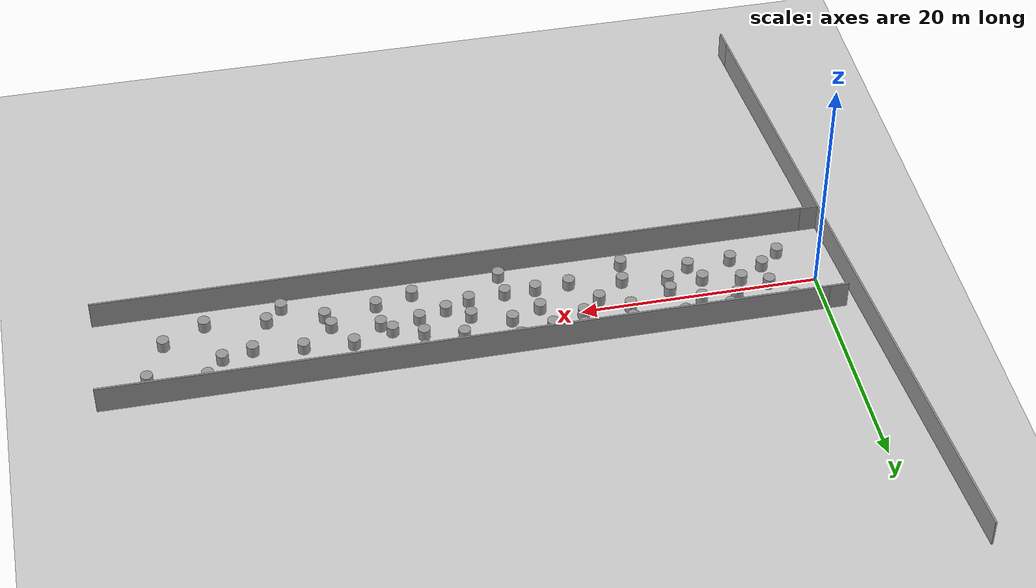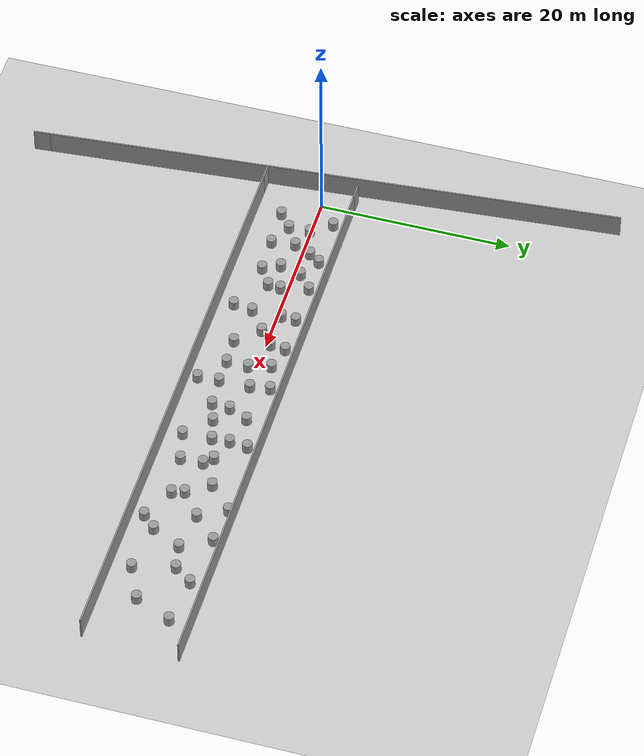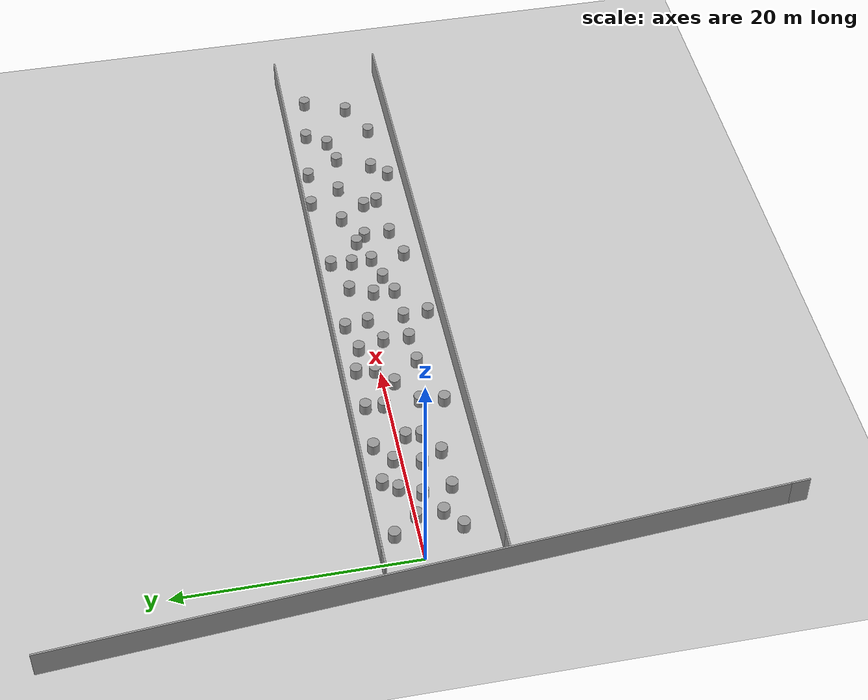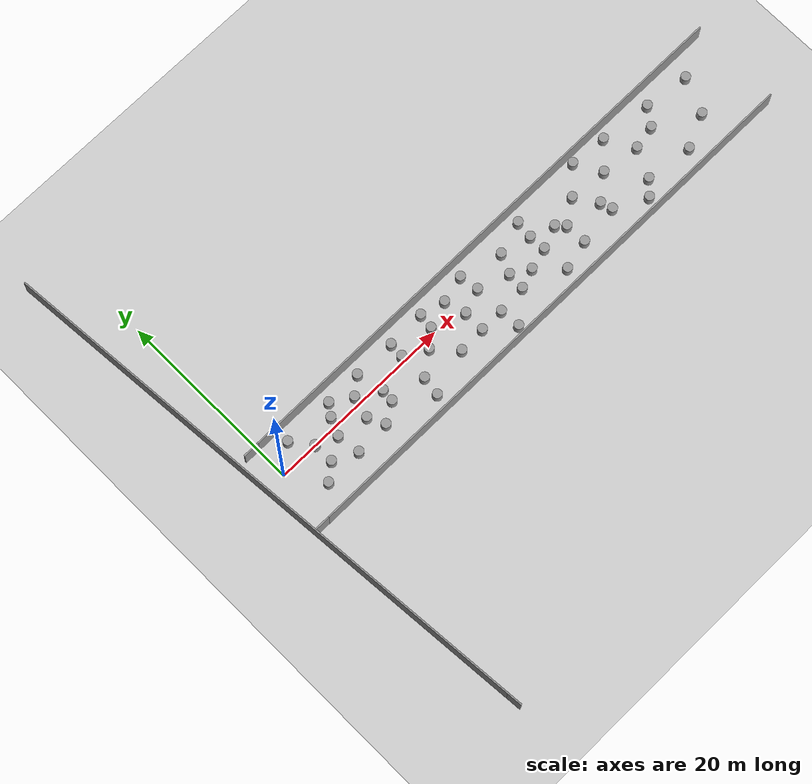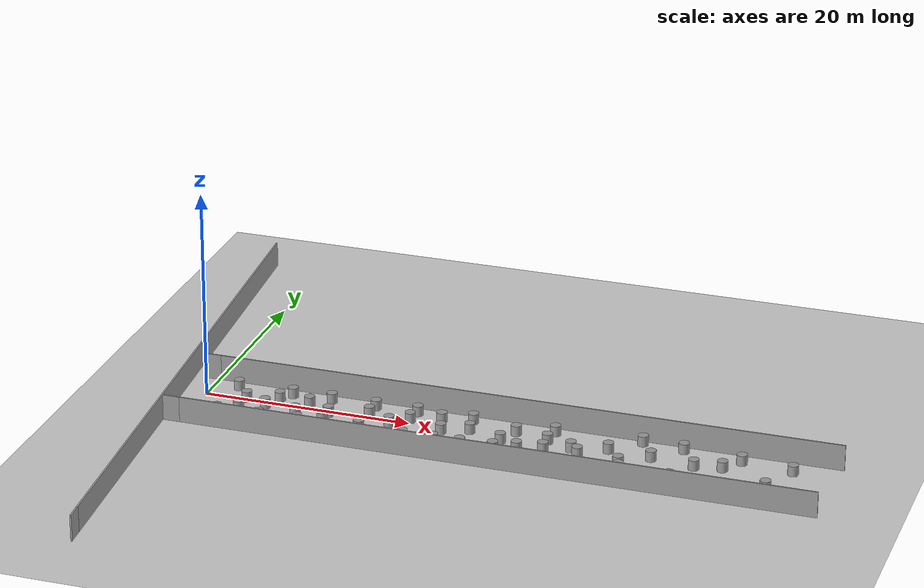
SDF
<sdf version="1.6">
 <world name="default">
  <light name="sun" type="directional">
   <pose>0 0 10 0 -0 0</pose>
   <diffuse>0.8 0.8 0.8 1</diffuse>
   <specular>0.2 0.2 0.2 1</specular>
   <attenuation>
    <range>1000</range>
    <constant>0.9</constant>
    <linear>0.01</linear>
    <quadratic>0.001</quadratic>
   </attenuation>
   <direction>-0.5 0.1 -0.9</direction>
  </light>
  <model name="ground_plane">
   <static>1</static>
   <link name="link">
    <collision name="collision">
     <geometry><plane><normal>0 0 1</normal><size>100 100</size></plane></geometry>
     <surface>
      <contact><collide_bitmask>65535</collide_bitmask></contact>
      <friction><ode><mu>100</mu><mu2>50</mu2></ode></friction>
     </surface>
    </collision>
    <visual name="visual">
     <cast_shadows>0</cast_shadows>
     <geometry><plane><normal>0 0 1</normal><size>100 100</size></plane></geometry>
     <material>
      <script><uri>file://media/materials/scripts/gazebo.material</uri><name>Gazebo/Grey</name></script>
     </material>
    </visual>
   </link>
  </model>
  <gravity>0 0 -9.8</gravity>
  <magnetic_field>6e-06 2.3e-05 -4.2e-05</magnetic_field>
  <atmosphere type="adiabatic"/>
  <physics name="default_physics" default="0" type="ode">
   <max_step_size>0.001</max_step_size>
   <real_time_factor>1</real_time_factor>
   <real_time_update_rate>1000</real_time_update_rate>
  </physics>
  <scene><ambient>0.4 0.4 0.4 1</ambient><background>0.7 0.7 0.7 1</background><shadows>1</shadows></scene>
  <audio><device>default</device></audio>
  <spherical_coordinates>
   <surface_model>EARTH_WGS84</surface_model>
   <latitude_deg>0</latitude_deg>
   <longitude_deg>0</longitude_deg>
   <elevation>0</elevation>
   <heading_deg>0</heading_deg>
  </spherical_coordinates>
  <model name="unit_cylinder">
   <pose>6.99929 0.832206 0.499998 3e-06 -4e-06 0</pose>
   <link name="link">
    <inertial>
     <mass>1</mass>
     <inertia><ixx>0.145833</ixx><ixy>0</ixy><ixz>0</ixz><iyy>0.145833</iyy><iyz>0</iyz><izz>0.125</izz></inertia>
    </inertial>
    <collision name="collision">
     <geometry><cylinder><radius>0.5</radius><length>1</length></cylinder></geometry>
    </collision>
    <visual name="visual">
     <geometry><cylinder><radius>0.5</radius><length>1</length></cylinder></geometry>
     <material>
      <script><name>Gazebo/Grey</name><uri>file://media/materials/scripts/gazebo.material</uri></script>
     </material>
    </visual>
   </link>
  </model>
  <model name="unit_cylinder_0">
   <pose>4.06146 -2.25804 0.499992 -3e-06 4e-06 0</pose>
   <link name="link">
    <inertial>
     <mass>1</mass>
     <inertia><ixx>0.145833</ixx><ixy>0</ixy><ixz>0</ixz><iyy>0.145833</iyy><iyz>0</iyz><izz>0.125</izz></inertia>
    </inertial>
    <collision name="collision">
     <geometry><cylinder><radius>0.5</radius><length>1</length></cylinder></geometry>
    </collision>
    <visual name="visual">
     <geometry><cylinder><radius>0.5</radius><length>1</length></cylinder></geometry>
     <material>
      <script><name>Gazebo/Grey</name><uri>file://media/materials/scripts/gazebo.material</uri></script>
     </material>
    </visual>
   </link>
  </model>
  <model name="unit_cylinder_1">
   <pose>11.6938 2.06939 0.499992 -3e-06 4e-06 0</pose>
   <link name="link">
    <inertial>
     <mass>1</mass>
     <inertia><ixx>0.145833</ixx><ixy>0</ixy><ixz>0</ixz><iyy>0.145833</iyy><iyz>0</iyz><izz>0.125</izz></inertia>
    </inertial>
    <collision name="collision">
     <geometry><cylinder><radius>0.5</radius><length>1</length></cylinder></geometry>
    </collision>
    <visual name="visual">
     <geometry><cylinder><radius>0.5</radius><length>1</length></cylinder></geometry>
     <material>
      <script><name>Gazebo/Grey</name><uri>file://media/materials/scripts/gazebo.material</uri></script>
     </material>
    </visual>
   </link>
  </model>
  <model name="unit_cylinder_2">
   <pose>9.38691 -1.54603 0.499992 -3e-06 4e-06 0</pose>
   <link name="link">
    <inertial>
     <mass>1</mass>
     <inertia><ixx>0.145833</ixx><ixy>0</ixy><ixz>0</ixz><iyy>0.145833</iyy><iyz>0</iyz><izz>0.125</izz></inertia>
    </inertial>
    <collision name="collision">
     <geometry><cylinder><radius>0.5</radius><length>1</length></cylinder></geometry>
    </collision>
    <visual name="visual">
     <geometry><cylinder><radius>0.5</radius><length>1</length></cylinder></geometry>
     <material>
      <script><name>Gazebo/Grey</name><uri>file://media/materials/scripts/gazebo.material</uri></script>
     </material>
    </visual>
   </link>
  </model>
  <model name="unit_cylinder_3">
   <pose>15.6885 -4.63383 0.499992 -3e-06 4e-06 0</pose>
   <link name="link">
    <inertial>
     <mass>1</mass>
     <inertia><ixx>0.145833</ixx><ixy>0</ixy><ixz>0</ixz><iyy>0.145833</iyy><iyz>0</iyz><izz>0.125</izz></inertia>
    </inertial>
    <collision name="collision">
     <geometry><cylinder><radius>0.5</radius><length>1</length></cylinder></geometry>
    </collision>
    <visual name="visual">
     <geometry><cylinder><radius>0.5</radius><length>1</length></cylinder></geometry>
     <material>
      <script><name>Gazebo/Grey</name><uri>file://media/materials/scripts/gazebo.material</uri></script>
     </material>
    </visual>
   </link>
  </model>
  <model name="unit_cylinder_4">
   <pose>15.969 0.43538 0.499992 -3e-06 4e-06 0</pose>
   <link name="link">
    <inertial>
     <mass>1</mass>
     <inertia><ixx>0.145833</ixx><ixy>0</ixy><ixz>0</ixz><iyy>0.145833</iyy><iyz>0</iyz><izz>0.125</izz></inertia>
    </inertial>
    <collision name="collision">
     <geometry><cylinder><radius>0.5</radius><length>1</length></cylinder></geometry>
    </collision>
    <visual name="visual">
     <geometry><cylinder><radius>0.5</radius><length>1</length></cylinder></geometry>
     <material>
      <script><name>Gazebo/Grey</name><uri>file://media/materials/scripts/gazebo.material</uri></script>
     </material>
    </visual>
   </link>
  </model>
  <model name="unit_cylinder_5">
   <pose>20.1456 2.07583 0.499993 -3e-06 -1e-06 -0</pose>
   <link name="link">
    <inertial>
     <mass>1</mass>
     <inertia><ixx>0.145833</ixx><ixy>0</ixy><ixz>0</ixz><iyy>0.145833</iyy><iyz>0</iyz><izz>0.125</izz></inertia>
    </inertial>
    <collision name="collision">
     <geometry><cylinder><radius>0.5</radius><length>1</length></cylinder></geometry>
    </collision>
    <visual name="visual">
     <geometry><cylinder><radius>0.5</radius><length>1</length></cylinder></geometry>
     <material>
      <script><name>Gazebo/Grey</name><uri>file://media/materials/scripts/gazebo.material</uri></script>
     </material>
    </visual>
   </link>
  </model>
  <model name="unit_cylinder_6">
   <pose>20.4307 -3.17791 0.499998 3e-06 -4e-06 0</pose>
   <link name="link">
    <inertial>
     <mass>1</mass>
     <inertia><ixx>0.145833</ixx><ixy>0</ixy><ixz>0</ixz><iyy>0.145833</iyy><iyz>0</iyz><izz>0.125</izz></inertia>
    </inertial>
    <collision name="collision">
     <geometry><cylinder><radius>0.5</radius><length>1</length></cylinder></geometry>
    </collision>
    <visual name="visual">
     <geometry><cylinder><radius>0.5</radius><length>1</length></cylinder></geometry>
     <material>
      <script><name>Gazebo/Grey</name><uri>file://media/materials/scripts/gazebo.material</uri></script>
     </material>
    </visual>
   </link>
  </model>
  <model name="unit_cylinder_7">
   <pose>25.5153 2.11295 0.499998 3e-06 -4e-06 0</pose>
   <link name="link">
    <inertial>
     <mass>1</mass>
     <inertia><ixx>0.145833</ixx><ixy>0</ixy><ixz>0</ixz><iyy>0.145833</iyy><iyz>0</iyz><izz>0.125</izz></inertia>
    </inertial>
    <collision name="collision">
     <geometry><cylinder><radius>0.5</radius><length>1</length></cylinder></geometry>
    </collision>
    <visual name="visual">
     <geometry><cylinder><radius>0.5</radius><length>1</length></cylinder></geometry>
     <material>
      <script><name>Gazebo/Grey</name><uri>file://media/materials/scripts/gazebo.material</uri></script>
     </material>
    </visual>
   </link>
  </model>
  <model name="unit_cylinder_8">
   <pose>26.0064 -5.24581 0.499993 -3e-06 -1e-06 -0</pose>
   <link name="link">
    <inertial>
     <mass>1</mass>
     <inertia><ixx>0.145833</ixx><ixy>0</ixy><ixz>0</ixz><iyy>0.145833</iyy><iyz>0</iyz><izz>0.125</izz></inertia>
    </inertial>
    <collision name="collision">
     <geometry><cylinder><radius>0.5</radius><length>1</length></cylinder></geometry>
    </collision>
    <visual name="visual">
     <geometry><cylinder><radius>0.5</radius><length>1</length></cylinder></geometry>
     <material>
      <script><name>Gazebo/Grey</name><uri>file://media/materials/scripts/gazebo.material</uri></script>
     </material>
    </visual>
   </link>
  </model>
  <model name="unit_cylinder_9">
   <pose>29.9752 1.02368 0.499994 -4e-06 -3e-06 -0</pose>
   <link name="link">
    <inertial>
     <mass>1</mass>
     <inertia><ixx>0.145833</ixx><ixy>0</ixy><ixz>0</ixz><iyy>0.145833</iyy><iyz>0</iyz><izz>0.125</izz></inertia>
    </inertial>
    <collision name="collision">
     <geometry><cylinder><radius>0.5</radius><length>1</length></cylinder></geometry>
    </collision>
    <visual name="visual">
     <geometry><cylinder><radius>0.5</radius><length>1</length></cylinder></geometry>
     <material>
      <script><name>Gazebo/Grey</name><uri>file://media/materials/scripts/gazebo.material</uri></script>
     </material>
    </visual>
   </link>
  </model>
  <model name="unit_cylinder_10">
   <pose>28.9403 -2.84074 0.499997 4e-06 4e-06 -0</pose>
   <link name="link">
    <inertial>
     <mass>1</mass>
     <inertia><ixx>0.145833</ixx><ixy>0</ixy><ixz>0</ixz><iyy>0.145833</iyy><iyz>0</iyz><izz>0.125</izz></inertia>
    </inertial>
    <collision name="collision">
     <geometry><cylinder><radius>0.5</radius><length>1</length></cylinder></geometry>
    </collision>
    <visual name="visual">
     <geometry><cylinder><radius>0.5</radius><length>1</length></cylinder></geometry>
     <material>
      <script><name>Gazebo/Grey</name><uri>file://media/materials/scripts/gazebo.material</uri></script>
     </material>
    </visual>
   </link>
  </model>
  <model name="unit_cylinder_11">
   <pose>38.9306 0.249721 0.499997 4e-06 4e-06 -0</pose>
   <link name="link">
    <inertial>
     <mass>1</mass>
     <inertia><ixx>0.145833</ixx><ixy>0</ixy><ixz>0</ixz><iyy>0.145833</iyy><iyz>0</iyz><izz>0.125</izz></inertia>
    </inertial>
    <collision name="collision">
     <geometry><cylinder><radius>0.5</radius><length>1</length></cylinder></geometry>
    </collision>
    <visual name="visual">
     <geometry><cylinder><radius>0.5</radius><length>1</length></cylinder></geometry>
     <material>
      <script><name>Gazebo/Grey</name><uri>file://media/materials/scripts/gazebo.material</uri></script>
     </material>
    </visual>
   </link>
  </model>
  <model name="unit_cylinder_12">
   <pose>23.3283 -0.825127 0.499994 -4e-06 -3e-06 -0</pose>
   <link name="link">
    <inertial>
     <mass>1</mass>
     <inertia><ixx>0.145833</ixx><ixy>0</ixy><ixz>0</ixz><iyy>0.145833</iyy><iyz>0</iyz><izz>0.125</izz></inertia>
    </inertial>
    <collision name="collision">
     <geometry><cylinder><radius>0.5</radius><length>1</length></cylinder></geometry>
    </collision>
    <visual name="visual">
     <geometry><cylinder><radius>0.5</radius><length>1</length></cylinder></geometry>
     <material>
      <script><name>Gazebo/Grey</name><uri>file://media/materials/scripts/gazebo.material</uri></script>
     </material>
    </visual>
   </link>
  </model>
  <model name="unit_cylinder_13">
   <pose>12.3468 -0.723974 0.499997 4e-06 4e-06 -0</pose>
   <link name="link">
    <inertial>
     <mass>1</mass>
     <inertia><ixx>0.145833</ixx><ixy>0</ixy><ixz>0</ixz><iyy>0.145833</iyy><iyz>0</iyz><izz>0.125</izz></inertia>
    </inertial>
    <collision name="collision">
     <geometry><cylinder><radius>0.5</radius><length>1</length></cylinder></geometry>
    </collision>
    <visual name="visual">
     <geometry><cylinder><radius>0.5</radius><length>1</length></cylinder></geometry>
     <material>
      <script><name>Gazebo/Grey</name><uri>file://media/materials/scripts/gazebo.material</uri></script>
     </material>
    </visual>
   </link>
  </model>
  <model name="unit_cylinder_14">
   <pose>33.4337 -4.49053 0.499997 4e-06 4e-06 -0</pose>
   <link name="link">
    <inertial>
     <mass>1</mass>
     <inertia><ixx>0.145833</ixx><ixy>0</ixy><ixz>0</ixz><iyy>0.145833</iyy><iyz>0</iyz><izz>0.125</izz></inertia>
    </inertial>
    <collision name="collision">
     <geometry><cylinder><radius>0.5</radius><length>1</length></cylinder></geometry>
    </collision>
    <visual name="visual">
     <geometry><cylinder><radius>0.5</radius><length>1</length></cylinder></geometry>
     <material>
      <script><name>Gazebo/Grey</name><uri>file://media/materials/scripts/gazebo.material</uri></script>
     </material>
    </visual>
   </link>
  </model>
  <model name="unit_cylinder_15">
   <pose>33.2811 -1.5191 0.499997 4e-06 4e-06 -0</pose>
   <link name="link">
    <inertial>
     <mass>1</mass>
     <inertia><ixx>0.145833</ixx><ixy>0</ixy><ixz>0</ixz><iyy>0.145833</iyy><iyz>0</iyz><izz>0.125</izz></inertia>
    </inertial>
    <collision name="collision">
     <geometry><cylinder><radius>0.5</radius><length>1</length></cylinder></geometry>
    </collision>
    <visual name="visual">
     <geometry><cylinder><radius>0.5</radius><length>1</length></cylinder></geometry>
     <material>
      <script><name>Gazebo/Grey</name><uri>file://media/materials/scripts/gazebo.material</uri></script>
     </material>
    </visual>
   </link>
  </model>
  <model name="unit_cylinder_16">
   <pose>33.3825 2.12177 0.499992 -3e-06 2e-06 0</pose>
   <link name="link">
    <inertial>
     <mass>1</mass>
     <inertia><ixx>0.145833</ixx><ixy>0</ixy><ixz>0</ixz><iyy>0.145833</iyy><iyz>0</iyz><izz>0.125</izz></inertia>
    </inertial>
    <collision name="collision">
     <geometry><cylinder><radius>0.5</radius><length>1</length></cylinder></geometry>
    </collision>
    <visual name="visual">
     <geometry><cylinder><radius>0.5</radius><length>1</length></cylinder></geometry>
     <material>
      <script><name>Gazebo/Grey</name><uri>file://media/materials/scripts/gazebo.material</uri></script>
     </material>
    </visual>
   </link>
  </model>
  <model name="unit_cylinder_17">
   <pose>35.6441 -0.58837 0.499992 -3e-06 2e-06 0</pose>
   <link name="link">
    <inertial>
     <mass>1</mass>
     <inertia><ixx>0.145833</ixx><ixy>0</ixy><ixz>0</ixz><iyy>0.145833</iyy><iyz>0</iyz><izz>0.125</izz></inertia>
    </inertial>
    <collision name="collision">
     <geometry><cylinder><radius>0.5</radius><length>1</length></cylinder></geometry>
    </collision>
    <visual name="visual">
     <geometry><cylinder><radius>0.5</radius><length>1</length></cylinder></geometry>
     <material>
      <script><name>Gazebo/Grey</name><uri>file://media/materials/scripts/gazebo.material</uri></script>
     </material>
    </visual>
   </link>
  </model>
  <model name="unit_cylinder_18">
   <pose>40.8577 -3.2866 0.499997 4e-06 4e-06 -0</pose>
   <link name="link">
    <inertial>
     <mass>1</mass>
     <inertia><ixx>0.145833</ixx><ixy>0</ixy><ixz>0</ixz><iyy>0.145833</iyy><iyz>0</iyz><izz>0.125</izz></inertia>
    </inertial>
    <collision name="collision">
     <geometry><cylinder><radius>0.5</radius><length>1</length></cylinder></geometry>
    </collision>
    <visual name="visual">
     <geometry><cylinder><radius>0.5</radius><length>1</length></cylinder></geometry>
     <material>
      <script><name>Gazebo/Grey</name><uri>file://media/materials/scripts/gazebo.material</uri></script>
     </material>
    </visual>
   </link>
  </model>
  <model name="unit_cylinder_19">
   <pose>41.4999 2.67103 0.499997 4e-06 4e-06 -0</pose>
   <link name="link">
    <inertial>
     <mass>1</mass>
     <inertia><ixx>0.145833</ixx><ixy>0</ixy><ixz>0</ixz><iyy>0.145833</iyy><iyz>0</iyz><izz>0.125</izz></inertia>
    </inertial>
    <collision name="collision">
     <geometry><cylinder><radius>0.5</radius><length>1</length></cylinder></geometry>
    </collision>
    <visual name="visual">
     <geometry><cylinder><radius>0.5</radius><length>1</length></cylinder></geometry>
     <material>
      <script><name>Gazebo/Grey</name><uri>file://media/materials/scripts/gazebo.material</uri></script>
     </material>
    </visual>
   </link>
  </model>
  <model name="unit_cylinder_20">
   <pose>42.9995 -0.081268 0.499994 -3e-06 -2e-06 0</pose>
   <link name="link">
    <inertial>
     <mass>1</mass>
     <inertia><ixx>0.145833</ixx><ixy>0</ixy><ixz>0</ixz><iyy>0.145833</iyy><iyz>0</iyz><izz>0.125</izz></inertia>
    </inertial>
    <collision name="collision">
     <geometry><cylinder><radius>0.5</radius><length>1</length></cylinder></geometry>
    </collision>
    <visual name="visual">
     <geometry><cylinder><radius>0.5</radius><length>1</length></cylinder></geometry>
     <material>
      <script><name>Gazebo/Grey</name><uri>file://media/materials/scripts/gazebo.material</uri></script>
     </material>
    </visual>
   </link>
  </model>
  <model name="unit_cylinder_21">
   <pose>36.5585 -3.73062 0.499994 -3e-06 -2e-06 0</pose>
   <link name="link">
    <inertial>
     <mass>1</mass>
     <inertia><ixx>0.145833</ixx><ixy>0</ixy><ixz>0</ixz><iyy>0.145833</iyy><iyz>0</iyz><izz>0.125</izz></inertia>
    </inertial>
    <collision name="collision">
     <geometry><cylinder><radius>0.5</radius><length>1</length></cylinder></geometry>
    </collision>
    <visual name="visual">
     <geometry><cylinder><radius>0.5</radius><length>1</length></cylinder></geometry>
     <material>
      <script><name>Gazebo/Grey</name><uri>file://media/materials/scripts/gazebo.material</uri></script>
     </material>
    </visual>
   </link>
  </model>
  <model name="unit_cylinder_22">
   <pose>44.2549 -4.96705 0.499998 3e-06 -2e-06 0</pose>
   <link name="link">
    <inertial>
     <mass>1</mass>
     <inertia><ixx>0.145833</ixx><ixy>0</ixy><ixz>0</ixz><iyy>0.145833</iyy><iyz>0</iyz><izz>0.125</izz></inertia>
    </inertial>
    <collision name="collision">
     <geometry><cylinder><radius>0.5</radius><length>1</length></cylinder></geometry>
    </collision>
    <visual name="visual">
     <geometry><cylinder><radius>0.5</radius><length>1</length></cylinder></geometry>
     <material>
      <script><name>Gazebo/Grey</name><uri>file://media/materials/scripts/gazebo.material</uri></script>
     </material>
    </visual>
   </link>
  </model>
  <model name="unit_cylinder_23">
   <pose>47.0887 -0.585002 0.499998 3e-06 -3e-06 0</pose>
   <link name="link">
    <inertial>
     <mass>1</mass>
     <inertia><ixx>0.145833</ixx><ixy>0</ixy><ixz>0</ixz><iyy>0.145833</iyy><iyz>0</iyz><izz>0.125</izz></inertia>
    </inertial>
    <collision name="collision">
     <geometry><cylinder><radius>0.5</radius><length>1</length></cylinder></geometry>
    </collision>
    <visual name="visual">
     <geometry><cylinder><radius>0.5</radius><length>1</length></cylinder></geometry>
     <material>
      <script><name>Gazebo/Grey</name><uri>file://media/materials/scripts/gazebo.material</uri></script>
     </material>
    </visual>
   </link>
  </model>
  <model name="unit_cylinder_24">
   <pose>45.6178 -3.59792 0.499998 3e-06 -2e-06 0</pose>
   <link name="link">
    <inertial>
     <mass>1</mass>
     <inertia><ixx>0.145833</ixx><ixy>0</ixy><ixz>0</ixz><iyy>0.145833</iyy><iyz>0</iyz><izz>0.125</izz></inertia>
    </inertial>
    <collision name="collision">
     <geometry><cylinder><radius>0.5</radius><length>1</length></cylinder></geometry>
    </collision>
    <visual name="visual">
     <geometry><cylinder><radius>0.5</radius><length>1</length></cylinder></geometry>
     <material>
      <script><name>Gazebo/Grey</name><uri>file://media/materials/scripts/gazebo.material</uri></script>
     </material>
    </visual>
   </link>
  </model>
  <model name="unit_cylinder_25">
   <pose>45.4222 2.34595 0.499998 3e-06 -2e-06 0</pose>
   <link name="link">
    <inertial>
     <mass>1</mass>
     <inertia><ixx>0.145833</ixx><ixy>0</ixy><ixz>0</ixz><iyy>0.145833</iyy><iyz>0</iyz><izz>0.125</izz></inertia>
    </inertial>
    <collision name="collision">
     <geometry><cylinder><radius>0.5</radius><length>1</length></cylinder></geometry>
    </collision>
    <visual name="visual">
     <geometry><cylinder><radius>0.5</radius><length>1</length></cylinder></geometry>
     <material>
      <script><name>Gazebo/Grey</name><uri>file://media/materials/scripts/gazebo.material</uri></script>
     </material>
    </visual>
   </link>
  </model>
  <model name="unit_cylinder_26">
   <pose>50.9526 1.73898 0.499998 3e-06 -2e-06 0</pose>
   <link name="link">
    <inertial>
     <mass>1</mass>
     <inertia><ixx>0.145833</ixx><ixy>0</ixy><ixz>0</ixz><iyy>0.145833</iyy><iyz>0</iyz><izz>0.125</izz></inertia>
    </inertial>
    <collision name="collision">
     <geometry><cylinder><radius>0.5</radius><length>1</length></cylinder></geometry>
    </collision>
    <visual name="visual">
     <geometry><cylinder><radius>0.5</radius><length>1</length></cylinder></geometry>
     <material>
      <script><name>Gazebo/Grey</name><uri>file://media/materials/scripts/gazebo.material</uri></script>
     </material>
    </visual>
   </link>
  </model>
  <model name="unit_cylinder_27">
   <pose>50.6528 -4.19308 0.499998 3e-06 -2e-06 0</pose>
   <link name="link">
    <inertial>
     <mass>1</mass>
     <inertia><ixx>0.145833</ixx><ixy>0</ixy><ixz>0</ixz><iyy>0.145833</iyy><iyz>0</iyz><izz>0.125</izz></inertia>
    </inertial>
    <collision name="collision">
     <geometry><cylinder><radius>0.5</radius><length>1</length></cylinder></geometry>
    </collision>
    <visual name="visual">
     <geometry><cylinder><radius>0.5</radius><length>1</length></cylinder></geometry>
     <material>
      <script><name>Gazebo/Grey</name><uri>file://media/materials/scripts/gazebo.material</uri></script>
     </material>
    </visual>
   </link>
  </model>
  <model name="unit_cylinder_28">
   <pose>49.6096 -0.069509 0.499998 3e-06 -3e-06 0</pose>
   <link name="link">
    <inertial>
     <mass>1</mass>
     <inertia><ixx>0.145833</ixx><ixy>0</ixy><ixz>0</ixz><iyy>0.145833</iyy><iyz>0</iyz><izz>0.125</izz></inertia>
    </inertial>
    <collision name="collision">
     <geometry><cylinder><radius>0.5</radius><length>1</length></cylinder></geometry>
    </collision>
    <visual name="visual">
     <geometry><cylinder><radius>0.5</radius><length>1</length></cylinder></geometry>
     <material>
      <script><name>Gazebo/Grey</name><uri>file://media/materials/scripts/gazebo.material</uri></script>
     </material>
    </visual>
   </link>
  </model>
  <model name="unit_cylinder_29">
   <pose>55.7679 1.16425 0.499998 3e-06 -2e-06 0</pose>
   <link name="link">
    <inertial>
     <mass>1</mass>
     <inertia><ixx>0.145833</ixx><ixy>0</ixy><ixz>0</ixz><iyy>0.145833</iyy><iyz>0</iyz><izz>0.125</izz></inertia>
    </inertial>
    <collision name="collision">
     <geometry><cylinder><radius>0.5</radius><length>1</length></cylinder></geometry>
    </collision>
    <visual name="visual">
     <geometry><cylinder><radius>0.5</radius><length>1</length></cylinder></geometry>
     <material>
      <script><name>Gazebo/Grey</name><uri>file://media/materials/scripts/gazebo.material</uri></script>
     </material>
    </visual>
   </link>
  </model>
  <model name="unit_cylinder_30">
   <pose>54.1497 -2.57741 0.499998 3e-06 -3e-06 0</pose>
   <link name="link">
    <inertial>
     <mass>1</mass>
     <inertia><ixx>0.145833</ixx><ixy>0</ixy><ixz>0</ixz><iyy>0.145833</iyy><iyz>0</iyz><izz>0.125</izz></inertia>
    </inertial>
    <collision name="collision">
     <geometry><cylinder><radius>0.5</radius><length>1</length></cylinder></geometry>
    </collision>
    <visual name="visual">
     <geometry><cylinder><radius>0.5</radius><length>1</length></cylinder></geometry>
     <material>
      <script><name>Gazebo/Grey</name><uri>file://media/materials/scripts/gazebo.material</uri></script>
     </material>
    </visual>
   </link>
  </model>
  <model name="unit_cylinder_31">
   <pose>10.2116 -3.2923 0.499998 3e-06 -3e-06 0</pose>
   <link name="link">
    <inertial>
     <mass>1</mass>
     <inertia><ixx>0.145833</ixx><ixy>0</ixy><ixz>0</ixz><iyy>0.145833</iyy><iyz>0</iyz><izz>0.125</izz></inertia>
    </inertial>
    <collision name="collision">
     <geometry><cylinder><radius>0.5</radius><length>1</length></cylinder></geometry>
    </collision>
    <visual name="visual">
     <geometry><cylinder><radius>0.5</radius><length>1</length></cylinder></geometry>
     <material>
      <script><name>Gazebo/Grey</name><uri>file://media/materials/scripts/gazebo.material</uri></script>
     </material>
    </visual>
   </link>
  </model>
  <model name="wall_up02">
   <pose>28.9007 -6.26634 0 0 -0 0</pose>
   <link name="Wall_0">
    <collision name="Wall_0_Collision">
     <geometry><box><size>60 0.15 2.5</size></box></geometry>
     <pose>0 0 1.25 0 -0 0</pose>
    </collision>
    <visual name="Wall_0_Visual">
     <pose>0 0 1.25 0 -0 0</pose>
     <geometry><box><size>60 0.15 2.5</size></box></geometry>
     <material>
      <script><uri>file://media/materials/scripts/gazebo.material</uri><name>Gazebo/Grey</name></script>
      <ambient>1 1 1 1</ambient>
     </material>
     <meta><layer>0</layer></meta>
    </visual>
    <pose>0.799999 0 0 0 -0 3.14159</pose>
   </link>
   <link name="Wall_1">
    <collision name="Wall_1_Collision">
     <geometry><box><size>1.75 0.15 2.5</size></box></geometry>
     <pose>0 0 1.25 0 -0 0</pose>
    </collision>
    <visual name="Wall_1_Visual">
     <pose>0 0 1.25 0 -0 0</pose>
     <geometry><box><size>1.75 0.15 2.5</size></box></geometry>
     <material>
      <script><uri>file://media/materials/scripts/gazebo.material</uri><name>Gazebo/Grey</name></script>
      <ambient>0 0 0 1</ambient>
     </material>
     <meta><layer>0</layer></meta>
    </visual>
    <pose>-29.925 0 0 0 -0 3.14159</pose>
   </link>
   <static>1</static>
  </model>
  <model name="wall_up02_0">
   <pose>29.1538 3.41974 0 0 -0 0</pose>
   <link name="Wall_0">
    <collision name="Wall_0_Collision">
     <geometry><box><size>60 0.15 2.5</size></box></geometry>
     <pose>0 0 1.25 0 -0 0</pose>
    </collision>
    <visual name="Wall_0_Visual">
     <pose>0 0 1.25 0 -0 0</pose>
     <geometry><box><size>60 0.15 2.5</size></box></geometry>
     <material>
      <script><uri>file://media/materials/scripts/gazebo.material</uri><name>Gazebo/Grey</name></script>
      <ambient>1 1 1 1</ambient>
     </material>
     <meta><layer>0</layer></meta>
    </visual>
    <pose>0.799999 0 0 0 -0 3.14159</pose>
   </link>
   <link name="Wall_1">
    <collision name="Wall_1_Collision">
     <geometry><box><size>1.75 0.15 2.5</size></box></geometry>
     <pose>0 0 1.25 0 -0 0</pose>
    </collision>
    <visual name="Wall_1_Visual">
     <pose>0 0 1.25 0 -0 0</pose>
     <geometry><box><size>1.75 0.15 2.5</size></box></geometry>
     <material>
      <script><uri>file://media/materials/scripts/gazebo.material</uri><name>Gazebo/Grey</name></script>
      <ambient>0 0 0 1</ambient>
     </material>
     <meta><layer>0</layer></meta>
    </visual>
    <pose>-29.925 0 0 0 -0 3.14159</pose>
   </link>
   <static>1</static>
  </model>
  <model name="wall_up02_1">
   <pose>-2.31259 -0.303192 0 0 -0 1.64986</pose>
   <link name="Wall_0">
    <collision name="Wall_0_Collision">
     <geometry><box><size>60 0.15 2.5</size></box></geometry>
     <pose>0 0 1.25 0 -0 0</pose>
    </collision>
    <visual name="Wall_0_Visual">
     <pose>0 0 1.25 0 -0 0</pose>
     <geometry><box><size>60 0.15 2.5</size></box></geometry>
     <material>
      <script><uri>file://media/materials/scripts/gazebo.material</uri><name>Gazebo/Grey</name></script>
      <ambient>1 1 1 1</ambient>
     </material>
     <meta><layer>0</layer></meta>
    </visual>
    <pose>0.799999 0 0 0 -0 3.14159</pose>
   </link>
   <link name="Wall_1">
    <collision name="Wall_1_Collision">
     <geometry><box><size>1.75 0.15 2.5</size></box></geometry>
     <pose>0 0 1.25 0 -0 0</pose>
    </collision>
    <visual name="Wall_1_Visual">
     <pose>0 0 1.25 0 -0 0</pose>
     <geometry><box><size>1.75 0.15 2.5</size></box></geometry>
     <material>
      <script><uri>file://media/materials/scripts/gazebo.material</uri><name>Gazebo/Grey</name></script>
      <ambient>0 0 0 1</ambient>
     </material>
     <meta><layer>0</layer></meta>
    </visual>
    <pose>-29.925 0 0 0 -0 3.14159</pose>
   </link>
   <static>1</static>
  </model>
  <model name="unit_cylinder_32">
   <pose>2.42276 -3.5512 0.499992 -3e-06 4e-06 0</pose>
   <link name="link">
    <inertial>
     <mass>1</mass>
     <inertia><ixx>0.145833</ixx><ixy>0</ixy><ixz>0</ixz><iyy>0.145833</iyy><iyz>0</iyz><izz>0.125</izz></inertia>
    </inertial>
    <collision name="collision">
     <geometry><cylinder><radius>0.5</radius><length>1</length></cylinder></geometry>
    </collision>
    <visual name="visual">
     <geometry><cylinder><radius>0.5</radius><length>1</length></cylinder></geometry>
     <material>
      <script><name>Gazebo/Grey</name><uri>file://media/materials/scripts/gazebo.material</uri></script>
     </material>
    </visual>
   </link>
  </model>
  <model name="unit_cylinder_33">
   <pose>4.0393 -0.071047 0.499992 -3e-06 4e-06 0</pose>
   <link name="link">
    <inertial>
     <mass>1</mass>
     <inertia><ixx>0.145833</ixx><ixy>0</ixy><ixz>0</ixz><iyy>0.145833</iyy><iyz>0</iyz><izz>0.125</izz></inertia>
    </inertial>
    <collision name="collision">
     <geometry><cylinder><radius>0.5</radius><length>1</length></cylinder></geometry>
    </collision>
    <visual name="visual">
     <geometry><cylinder><radius>0.5</radius><length>1</length></cylinder></geometry>
     <material>
      <script><name>Gazebo/Grey</name><uri>file://media/materials/scripts/gazebo.material</uri></script>
     </material>
    </visual>
   </link>
  </model>
  <model name="unit_cylinder_34">
   <pose>2.46949 1.99363 0.499998 3e-06 -4e-06 0</pose>
   <link name="link">
    <inertial>
     <mass>1</mass>
     <inertia><ixx>0.145833</ixx><ixy>0</ixy><ixz>0</ixz><iyy>0.145833</iyy><iyz>0</iyz><izz>0.125</izz></inertia>
    </inertial>
    <collision name="collision">
     <geometry><cylinder><radius>0.5</radius><length>1</length></cylinder></geometry>
    </collision>
    <visual name="visual">
     <geometry><cylinder><radius>0.5</radius><length>1</length></cylinder></geometry>
     <material>
      <script><name>Gazebo/Grey</name><uri>file://media/materials/scripts/gazebo.material</uri></script>
     </material>
    </visual>
   </link>
  </model>
  <model name="unit_cylinder_35">
   <pose>7.86543 2.01658 0.499992 -3e-06 4e-06 0</pose>
   <link name="link">
    <inertial>
     <mass>1</mass>
     <inertia><ixx>0.145833</ixx><ixy>0</ixy><ixz>0</ixz><iyy>0.145833</iyy><iyz>0</iyz><izz>0.125</izz></inertia>
    </inertial>
    <collision name="collision">
     <geometry><cylinder><radius>0.5</radius><length>1</length></cylinder></geometry>
    </collision>
    <visual name="visual">
     <geometry><cylinder><radius>0.5</radius><length>1</length></cylinder></geometry>
     <material>
      <script><name>Gazebo/Grey</name><uri>file://media/materials/scripts/gazebo.material</uri></script>
     </material>
    </visual>
   </link>
  </model>
  <model name="unit_cylinder_36">
   <pose>6.51456 -3.42246 0.499998 3e-06 -4e-06 0</pose>
   <link name="link">
    <inertial>
     <mass>1</mass>
     <inertia><ixx>0.145833</ixx><ixy>0</ixy><ixz>0</ixz><iyy>0.145833</iyy><iyz>0</iyz><izz>0.125</izz></inertia>
    </inertial>
    <collision name="collision">
     <geometry><cylinder><radius>0.5</radius><length>1</length></cylinder></geometry>
    </collision>
    <visual name="visual">
     <geometry><cylinder><radius>0.5</radius><length>1</length></cylinder></geometry>
     <material>
      <script><name>Gazebo/Grey</name><uri>file://media/materials/scripts/gazebo.material</uri></script>
     </material>
    </visual>
   </link>
  </model>
  <model name="unit_cylinder_37">
   <pose>6.19796 -0.959997 0.499992 -3e-06 4e-06 0</pose>
   <link name="link">
    <inertial>
     <mass>1</mass>
     <inertia><ixx>0.145833</ixx><ixy>0</ixy><ixz>0</ixz><iyy>0.145833</iyy><iyz>0</iyz><izz>0.125</izz></inertia>
    </inertial>
    <collision name="collision">
     <geometry><cylinder><radius>0.5</radius><length>1</length></cylinder></geometry>
    </collision>
    <visual name="visual">
     <geometry><cylinder><radius>0.5</radius><length>1</length></cylinder></geometry>
     <material>
      <script><name>Gazebo/Grey</name><uri>file://media/materials/scripts/gazebo.material</uri></script>
     </material>
    </visual>
   </link>
  </model>
  <model name="unit_cylinder_38">
   <pose>16.0034 -2.60807 0.499992 -3e-06 -4e-06 -0</pose>
   <link name="link">
    <inertial>
     <mass>1</mass>
     <inertia><ixx>0.145833</ixx><ixy>0</ixy><ixz>0</ixz><iyy>0.145833</iyy><iyz>0</iyz><izz>0.125</izz></inertia>
    </inertial>
    <collision name="collision">
     <geometry><cylinder><radius>0.5</radius><length>1</length></cylinder></geometry>
    </collision>
    <visual name="visual">
     <geometry><cylinder><radius>0.5</radius><length>1</length></cylinder></geometry>
     <material>
      <script><name>Gazebo/Grey</name><uri>file://media/materials/scripts/gazebo.material</uri></script>
     </material>
    </visual>
   </link>
  </model>
  <model name="unit_cylinder_39">
   <pose>12.2342 -2.05305 0.499998 3e-06 4e-06 -0</pose>
   <link name="link">
    <inertial>
     <mass>1</mass>
     <inertia><ixx>0.145833</ixx><ixy>0</ixy><ixz>0</ixz><iyy>0.145833</iyy><iyz>0</iyz><izz>0.125</izz></inertia>
    </inertial>
    <collision name="collision">
     <geometry><cylinder><radius>0.5</radius><length>1</length></cylinder></geometry>
    </collision>
    <visual name="visual">
     <geometry><cylinder><radius>0.5</radius><length>1</length></cylinder></geometry>
     <material>
      <script><name>Gazebo/Grey</name><uri>file://media/materials/scripts/gazebo.material</uri></script>
     </material>
    </visual>
   </link>
  </model>
  <model name="unit_cylinder_40">
   <pose>9.99238 0.699421 0.499993 -3e-06 -3e-06 0</pose>
   <link name="link">
    <inertial>
     <mass>1</mass>
     <inertia><ixx>0.145833</ixx><ixy>0</ixy><ixz>0</ixz><iyy>0.145833</iyy><iyz>0</iyz><izz>0.125</izz></inertia>
    </inertial>
    <collision name="collision">
     <geometry><cylinder><radius>0.5</radius><length>1</length></cylinder></geometry>
    </collision>
    <visual name="visual">
     <geometry><cylinder><radius>0.5</radius><length>1</length></cylinder></geometry>
     <material>
      <script><name>Gazebo/Grey</name><uri>file://media/materials/scripts/gazebo.material</uri></script>
     </material>
    </visual>
   </link>
  </model>
  <model name="unit_cylinder_41">
   <pose>16.0707 1.97233 0.499997 3e-06 3e-06 0</pose>
   <link name="link">
    <inertial>
     <mass>1</mass>
     <inertia><ixx>0.145833</ixx><ixy>0</ixy><ixz>0</ixz><iyy>0.145833</iyy><iyz>0</iyz><izz>0.125</izz></inertia>
    </inertial>
    <collision name="collision">
     <geometry><cylinder><radius>0.5</radius><length>1</length></cylinder></geometry>
    </collision>
    <visual name="visual">
     <geometry><cylinder><radius>0.5</radius><length>1</length></cylinder></geometry>
     <material>
      <script><name>Gazebo/Grey</name><uri>file://media/materials/scripts/gazebo.material</uri></script>
     </material>
    </visual>
   </link>
  </model>
  <model name="unit_cylinder_42">
   <pose>18.3381 -0.893434 0.499993 -3e-06 -4e-06 -0</pose>
   <link name="link">
    <inertial>
     <mass>1</mass>
     <inertia><ixx>0.145833</ixx><ixy>0</ixy><ixz>0</ixz><iyy>0.145833</iyy><iyz>0</iyz><izz>0.125</izz></inertia>
    </inertial>
    <collision name="collision">
     <geometry><cylinder><radius>0.5</radius><length>1</length></cylinder></geometry>
    </collision>
    <visual name="visual">
     <geometry><cylinder><radius>0.5</radius><length>1</length></cylinder></geometry>
     <material>
      <script><name>Gazebo/Grey</name><uri>file://media/materials/scripts/gazebo.material</uri></script>
     </material>
    </visual>
   </link>
  </model>
  <model name="unit_cylinder_43">
   <pose>19.9313 0.472077 0.499997 3e-06 4e-06 -0</pose>
   <link name="link">
    <inertial>
     <mass>1</mass>
     <inertia><ixx>0.145833</ixx><ixy>0</ixy><ixz>0</ixz><iyy>0.145833</iyy><iyz>0</iyz><izz>0.125</izz></inertia>
    </inertial>
    <collision name="collision">
     <geometry><cylinder><radius>0.5</radius><length>1</length></cylinder></geometry>
    </collision>
    <visual name="visual">
     <geometry><cylinder><radius>0.5</radius><length>1</length></cylinder></geometry>
     <material>
      <script><name>Gazebo/Grey</name><uri>file://media/materials/scripts/gazebo.material</uri></script>
     </material>
    </visual>
   </link>
  </model>
  <model name="unit_cylinder_44">
   <pose>23.2838 -3.07009 0.499997 3e-06 4e-06 -0</pose>
   <link name="link">
    <inertial>
     <mass>1</mass>
     <inertia><ixx>0.145833</ixx><ixy>0</ixy><ixz>0</ixz><iyy>0.145833</iyy><iyz>0</iyz><izz>0.125</izz></inertia>
    </inertial>
    <collision name="collision">
     <geometry><cylinder><radius>0.5</radius><length>1</length></cylinder></geometry>
    </collision>
    <visual name="visual">
     <geometry><cylinder><radius>0.5</radius><length>1</length></cylinder></geometry>
     <material>
      <script><name>Gazebo/Grey</name><uri>file://media/materials/scripts/gazebo.material</uri></script>
     </material>
    </visual>
   </link>
  </model>
  <model name="unit_cylinder_45">
   <pose>25.8259 0.093137 0.499993 -3e-06 -4e-06 -0</pose>
   <link name="link">
    <inertial>
     <mass>1</mass>
     <inertia><ixx>0.145833</ixx><ixy>0</ixy><ixz>0</ixz><iyy>0.145833</iyy><iyz>0</iyz><izz>0.125</izz></inertia>
    </inertial>
    <collision name="collision">
     <geometry><cylinder><radius>0.5</radius><length>1</length></cylinder></geometry>
    </collision>
    <visual name="visual">
     <geometry><cylinder><radius>0.5</radius><length>1</length></cylinder></geometry>
     <material>
      <script><name>Gazebo/Grey</name><uri>file://media/materials/scripts/gazebo.material</uri></script>
     </material>
    </visual>
   </link>
  </model>
  <model name="unit_cylinder_46">
   <pose>22.6914 1.41393 0.499997 3e-06 4e-06 -0</pose>
   <link name="link">
    <inertial>
     <mass>1</mass>
     <inertia><ixx>0.145833</ixx><ixy>0</ixy><ixz>0</ixz><iyy>0.145833</iyy><iyz>0</iyz><izz>0.125</izz></inertia>
    </inertial>
    <collision name="collision">
     <geometry><cylinder><radius>0.5</radius><length>1</length></cylinder></geometry>
    </collision>
    <visual name="visual">
     <geometry><cylinder><radius>0.5</radius><length>1</length></cylinder></geometry>
     <material>
      <script><name>Gazebo/Grey</name><uri>file://media/materials/scripts/gazebo.material</uri></script>
     </material>
    </visual>
   </link>
  </model>
  <model name="unit_cylinder_47">
   <pose>25.8749 -3.05958 0.499997 3e-06 4e-06 -0</pose>
   <link name="link">
    <inertial>
     <mass>1</mass>
     <inertia><ixx>0.145833</ixx><ixy>0</ixy><ixz>0</ixz><iyy>0.145833</iyy><iyz>0</iyz><izz>0.125</izz></inertia>
    </inertial>
    <collision name="collision">
     <geometry><cylinder><radius>0.5</radius><length>1</length></cylinder></geometry>
    </collision>
    <visual name="visual">
     <geometry><cylinder><radius>0.5</radius><length>1</length></cylinder></geometry>
     <material>
      <script><name>Gazebo/Grey</name><uri>file://media/materials/scripts/gazebo.material</uri></script>
     </material>
    </visual>
   </link>
  </model>
  <model name="unit_cylinder_48">
   <pose>29.0664 -0.981869 0.499997 3e-06 4e-06 -0</pose>
   <link name="link">
    <inertial>
     <mass>1</mass>
     <inertia><ixx>0.145833</ixx><ixy>0</ixy><ixz>0</ixz><iyy>0.145833</iyy><iyz>0</iyz><izz>0.125</izz></inertia>
    </inertial>
    <collision name="collision">
     <geometry><cylinder><radius>0.5</radius><length>1</length></cylinder></geometry>
    </collision>
    <visual name="visual">
     <geometry><cylinder><radius>0.5</radius><length>1</length></cylinder></geometry>
     <material>
      <script><name>Gazebo/Grey</name><uri>file://media/materials/scripts/gazebo.material</uri></script>
     </material>
    </visual>
   </link>
  </model>
  <model name="unit_cylinder_49">
   <pose>33.1767 0.268356 0.499997 3e-06 4e-06 -0</pose>
   <link name="link">
    <inertial>
     <mass>1</mass>
     <inertia><ixx>0.145833</ixx><ixy>0</ixy><ixz>0</ixz><iyy>0.145833</iyy><iyz>0</iyz><izz>0.125</izz></inertia>
    </inertial>
    <collision name="collision">
     <geometry><cylinder><radius>0.5</radius><length>1</length></cylinder></geometry>
    </collision>
    <visual name="visual">
     <geometry><cylinder><radius>0.5</radius><length>1</length></cylinder></geometry>
     <material>
      <script><name>Gazebo/Grey</name><uri>file://media/materials/scripts/gazebo.material</uri></script>
     </material>
    </visual>
   </link>
  </model>
  <model name="unit_cylinder_50">
   <pose>30.9769 -2.13298 0.499997 3e-06 4e-06 -0</pose>
   <link name="link">
    <inertial>
     <mass>1</mass>
     <inertia><ixx>0.145833</ixx><ixy>0</ixy><ixz>0</ixz><iyy>0.145833</iyy><iyz>0</iyz><izz>0.125</izz></inertia>
    </inertial>
    <collision name="collision">
     <geometry><cylinder><radius>0.5</radius><length>1</length></cylinder></geometry>
    </collision>
    <visual name="visual">
     <geometry><cylinder><radius>0.5</radius><length>1</length></cylinder></geometry>
     <material>
      <script><name>Gazebo/Grey</name><uri>file://media/materials/scripts/gazebo.material</uri></script>
     </material>
    </visual>
   </link>
  </model>
  <model name="unit_cylinder_51">
   <pose>40.4815 -2.04936 0.499993 -3e-06 -4e-06 -0</pose>
   <link name="link">
    <inertial>
     <mass>1</mass>
     <inertia><ixx>0.145833</ixx><ixy>0</ixy><ixz>0</ixz><iyy>0.145833</iyy><iyz>0</iyz><izz>0.125</izz></inertia>
    </inertial>
    <collision name="collision">
     <geometry><cylinder><radius>0.5</radius><length>1</length></cylinder></geometry>
    </collision>
    <visual name="visual">
     <geometry><cylinder><radius>0.5</radius><length>1</length></cylinder></geometry>
     <material>
      <script><name>Gazebo/Grey</name><uri>file://media/materials/scripts/gazebo.material</uri></script>
     </material>
    </visual>
   </link>
  </model>
  <model name="unit_cylinder_52">
   <pose>36.4819 -1.43798 0.499997 3e-06 4e-06 -0</pose>
   <link name="link">
    <inertial>
     <mass>1</mass>
     <inertia><ixx>0.145833</ixx><ixy>0</ixy><ixz>0</ixz><iyy>0.145833</iyy><iyz>0</iyz><izz>0.125</izz></inertia>
    </inertial>
    <collision name="collision">
     <geometry><cylinder><radius>0.5</radius><length>1</length></cylinder></geometry>
    </collision>
    <visual name="visual">
     <geometry><cylinder><radius>0.5</radius><length>1</length></cylinder></geometry>
     <material>
      <script><name>Gazebo/Grey</name><uri>file://media/materials/scripts/gazebo.material</uri></script>
     </material>
    </visual>
   </link>
  </model>
 </world>
</sdf>
